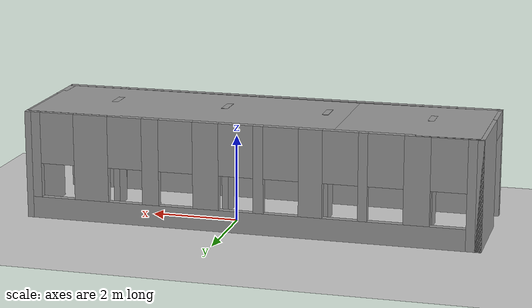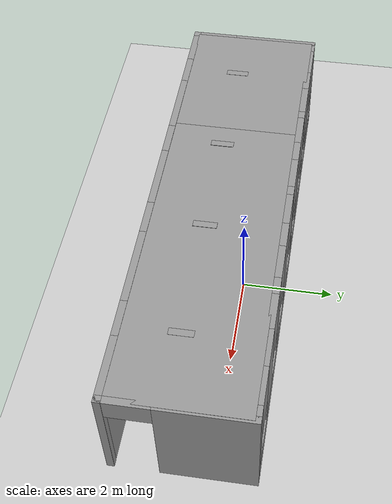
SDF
<sdf version="1.7">
 <world name="default">
  <model name="ground_plane">
   <static>1</static>
   <link name="link">
    <collision name="collision">
     <geometry><plane><normal>0 0 1</normal><size>100 100</size></plane></geometry>
     <surface><friction><ode><mu>100</mu><mu2>50</mu2></ode></friction></surface>
    </collision>
    <visual name="visual">
     <cast_shadows>0</cast_shadows>
     <geometry><plane><normal>0 0 1</normal><size>100 100</size></plane></geometry>
     <material>
      <script><uri>file://media/materials/scripts/gazebo.material</uri><name>Gazebo/Grey</name></script>
     </material>
    </visual>
   </link>
  </model>
  <light name="sun" type="directional">
   <pose>0 0 10 0 -0 0</pose>
   <diffuse>0.8 0.8 0.8 1</diffuse>
   <specular>0.2 0.2 0.2 1</specular>
   <attenuation>
    <range>1000</range>
    <constant>0.9</constant>
    <linear>0.01</linear>
    <quadratic>0.001</quadratic>
   </attenuation>
   <direction>-0.5 0.1 -0.9</direction>
   <spot><inner_angle>0</inner_angle><outer_angle>0</outer_angle><falloff>0</falloff></spot>
  </light>
  <scene><shadows>0</shadows><ambient>0.4 0.4 0.4 1</ambient><background>0.7 0.7 0.7 1</background></scene>
  <physics type="ode">
   <real_time_update_rate>1000</real_time_update_rate>
   <max_step_size>0.001</max_step_size>
   <real_time_factor>1</real_time_factor>
   <ode>
    <solver>
     <type>quick</type>
     <iters>150</iters>
     <precon_iters>0</precon_iters>
     <sor>1.4</sor>
     <use_dynamic_moi_rescaling>1</use_dynamic_moi_rescaling>
    </solver>
    <constraints>
     <cfm>1e-05</cfm>
     <erp>0.2</erp>
     <contact_max_correcting_vel>2000</contact_max_correcting_vel>
     <contact_surface_layer>0.01</contact_surface_layer>
    </constraints>
   </ode>
  </physics>
  <gravity>0 0 -9.8</gravity>
  <magnetic_field>6e-06 2.3e-05 -4.2e-05</magnetic_field>
  <atmosphere type="adiabatic"/>
  <audio><device>default</device></audio>
  <spherical_coordinates>
   <surface_model>EARTH_WGS84</surface_model>
   <latitude_deg>0</latitude_deg>
   <longitude_deg>0</longitude_deg>
   <elevation>0</elevation>
   <heading_deg>0</heading_deg>
  </spherical_coordinates>
  <model name="grey_wall_clone_2">
   <static>1</static>
   <link name="link">
    <pose>0 0 1.4 0 -0 0</pose>
    <collision name="collision"><geometry><box><size>7.5 0.2 2.8</size></box></geometry></collision>
    <visual name="visual">
     <cast_shadows>0</cast_shadows>
     <geometry><box><size>7.5 0.2 2.8</size></box></geometry>
     <material>
      <script>
       <uri>model://grey_wall/materials/scripts</uri>
       <uri>model://grey_wall/materials/textures</uri>
       <name>vrc/grey_wall</name>
      </script>
     </material>
    </visual>
   </link>
   <pose>0.940356 -1.94479 2.39221 1.56898 0.001795 3.14006</pose>
  </model>
  <model name="Warehouse">
   <pose>-0.503433 -0.236061 0 0 -0 0</pose>
   <link name="Wall_0">
    <pose>-5.175 -0.3075 0 0 -0 1.5708</pose>
    <visual name="Wall_0_Visual_0">
     <pose>-1.42278 0 1.25 0 -0 0</pose>
     <geometry><box><size>0.154444 0.15 2.5</size></box></geometry>
     <material>
      <script><uri>file://media/materials/scripts/gazebo.material</uri><name>Gazebo/Grey</name></script>
      <ambient>1 1 1 1</ambient>
     </material>
     <meta><layer>0</layer></meta>
    </visual>
    <collision name="Wall_0_Collision_0">
     <geometry><box><size>0.154444 0.15 2.5</size></box></geometry>
     <pose>-1.42278 0 1.25 0 -0 0</pose>
    </collision>
    <visual name="Wall_0_Visual_1">
     <pose>0.527222 0 1.25 0 -0 0</pose>
     <geometry><box><size>1.94556 0.15 2.5</size></box></geometry>
     <material>
      <script><uri>file://media/materials/scripts/gazebo.material</uri><name>Gazebo/Grey</name></script>
      <ambient>1 1 1 1</ambient>
     </material>
     <meta><layer>0</layer></meta>
    </visual>
    <collision name="Wall_0_Collision_1">
     <geometry><box><size>1.94556 0.15 2.5</size></box></geometry>
     <pose>0.527222 0 1.25 0 -0 0</pose>
    </collision>
    <visual name="Wall_0_Visual_2">
     <pose>-0.895556 0 2.25 0 -0 0</pose>
     <geometry><box><size>0.9 0.15 0.5</size></box></geometry>
     <material>
      <script><uri>file://media/materials/scripts/gazebo.material</uri><name>Gazebo/Grey</name></script>
      <ambient>1 1 1 1</ambient>
     </material>
     <meta><layer>0</layer></meta>
    </visual>
    <collision name="Wall_0_Collision_2">
     <geometry><box><size>0.9 0.15 0.5</size></box></geometry>
     <pose>-0.895556 0 2.25 0 -0 0</pose>
    </collision>
   </link>
   <link name="Wall_10">
    <collision name="Wall_10_Collision">
     <geometry><box><size>0.5 0.15 2.5</size></box></geometry>
     <pose>0 0 1.25 0 -0 0</pose>
    </collision>
    <visual name="Wall_10_Visual">
     <pose>0 0 1.25 0 -0 0</pose>
     <geometry><box><size>0.5 0.15 2.5</size></box></geometry>
     <material>
      <script><uri>file://media/materials/scripts/gazebo.material</uri><name>Gazebo/Grey</name></script>
      <ambient>1 1 1 1</ambient>
     </material>
     <meta><layer>0</layer></meta>
    </visual>
    <pose>-1.43035 -0.523709 0 0 -0 1.5708</pose>
   </link>
   <link name="Wall_12">
    <collision name="Wall_12_Collision">
     <geometry><box><size>0.5 0.15 2.5</size></box></geometry>
     <pose>0 0 1.25 0 -0 0</pose>
    </collision>
    <visual name="Wall_12_Visual">
     <pose>0 0 1.25 0 -0 0</pose>
     <geometry><box><size>0.5 0.15 2.5</size></box></geometry>
     <material>
      <script><uri>file://media/materials/scripts/gazebo.material</uri><name>Gazebo/Grey</name></script>
      <ambient>1 1 1 1</ambient>
     </material>
     <meta><layer>0</layer></meta>
    </visual>
    <pose>0.934869 -0.515013 0 0 -0 1.5708</pose>
   </link>
   <link name="Wall_15">
    <collision name="Wall_15_Collision">
     <geometry><box><size>0.5 0.15 2.5</size></box></geometry>
     <pose>0 0 1.25 0 -0 0</pose>
    </collision>
    <visual name="Wall_15_Visual">
     <pose>0 0 1.25 0 -0 0</pose>
     <geometry><box><size>0.5 0.15 2.5</size></box></geometry>
     <material>
      <script><uri>file://media/materials/scripts/gazebo.material</uri><name>Gazebo/Grey</name></script>
      <ambient>1 1 1 1</ambient>
     </material>
     <meta><layer>0</layer></meta>
    </visual>
    <pose>3.59574 -0.515013 0 0 -0 1.5708</pose>
   </link>
   <link name="Wall_2">
    <pose>-0 1.1175 0 0 -0 0</pose>
    <visual name="Wall_2_Visual_0">
     <pose>-5.07496 0 1.25 0 -0 0</pose>
     <geometry><box><size>0.350087 0.15 2.5</size></box></geometry>
     <material>
      <script><uri>file://media/materials/scripts/gazebo.material</uri><name>Gazebo/Grey</name></script>
      <ambient>1 1 1 1</ambient>
     </material>
     <meta><layer>0</layer></meta>
    </visual>
    <collision name="Wall_2_Collision_0">
     <geometry><box><size>0.350087 0.15 2.5</size></box></geometry>
     <pose>-5.07496 0 1.25 0 -0 0</pose>
    </collision>
    <visual name="Wall_2_Visual_1">
     <pose>0.175043 0 0.25 0 -0 0</pose>
     <geometry><box><size>10.1499 0.15 0.5</size></box></geometry>
     <material>
      <script><uri>file://media/materials/scripts/gazebo.material</uri><name>Gazebo/Grey</name></script>
      <ambient>1 1 1 1</ambient>
     </material>
     <meta><layer>0</layer></meta>
    </visual>
    <collision name="Wall_2_Collision_1">
     <geometry><box><size>10.1499 0.15 0.5</size></box></geometry>
     <pose>0.175043 0 0.25 0 -0 0</pose>
    </collision>
    <visual name="Wall_2_Visual_2">
     <pose>-3.80861 0 1.5 0 -0 0</pose>
     <geometry><box><size>0.582609 0.15 2</size></box></geometry>
     <material>
      <script><uri>file://media/materials/scripts/gazebo.material</uri><name>Gazebo/Grey</name></script>
      <ambient>1 1 1 1</ambient>
     </material>
     <meta><layer>0</layer></meta>
    </visual>
    <collision name="Wall_2_Collision_2">
     <geometry><box><size>0.582609 0.15 2</size></box></geometry>
     <pose>-3.80861 0 1.5 0 -0 0</pose>
    </collision>
    <visual name="Wall_2_Visual_3">
     <pose>-2.61296 0 1.5 0 -0 0</pose>
     <geometry><box><size>0.208696 0.15 2</size></box></geometry>
     <material>
      <script><uri>file://media/materials/scripts/gazebo.material</uri><name>Gazebo/Grey</name></script>
      <ambient>1 1 1 1</ambient>
     </material>
     <meta><layer>0</layer></meta>
    </visual>
    <collision name="Wall_2_Collision_3">
     <geometry><box><size>0.208696 0.15 2</size></box></geometry>
     <pose>-2.61296 0 1.5 0 -0 0</pose>
    </collision>
    <visual name="Wall_2_Visual_4">
     <pose>-1.43904 0 1.5 0 -0 0</pose>
     <geometry><box><size>0.53913 0.15 2</size></box></geometry>
     <material>
      <script><uri>file://media/materials/scripts/gazebo.material</uri><name>Gazebo/Grey</name></script>
      <ambient>1 1 1 1</ambient>
     </material>
     <meta><layer>0</layer></meta>
    </visual>
    <collision name="Wall_2_Collision_4">
     <geometry><box><size>0.53913 0.15 2</size></box></geometry>
     <pose>-1.43904 0 1.5 0 -0 0</pose>
    </collision>
    <visual name="Wall_2_Visual_5">
     <pose>-0.252087 0 1.5 0 -0 0</pose>
     <geometry><box><size>0.234783 0.15 2</size></box></geometry>
     <material>
      <script><uri>file://media/materials/scripts/gazebo.material</uri><name>Gazebo/Grey</name></script>
      <ambient>1 1 1 1</ambient>
     </material>
     <meta><layer>0</layer></meta>
    </visual>
    <collision name="Wall_2_Collision_5">
     <geometry><box><size>0.234783 0.15 2</size></box></geometry>
     <pose>-0.252087 0 1.5 0 -0 0</pose>
    </collision>
    <visual name="Wall_2_Visual_6">
     <pose>0.965304 0 1.5 0 -0 0</pose>
     <geometry><box><size>0.6 0.15 2</size></box></geometry>
     <material>
      <script><uri>file://media/materials/scripts/gazebo.material</uri><name>Gazebo/Grey</name></script>
      <ambient>1 1 1 1</ambient>
     </material>
     <meta><layer>0</layer></meta>
    </visual>
    <collision name="Wall_2_Collision_6">
     <geometry><box><size>0.6 0.15 2</size></box></geometry>
     <pose>0.965304 0 1.5 0 -0 0</pose>
    </collision>
    <visual name="Wall_2_Visual_7">
     <pose>2.26313 0 1.5 0 -0 0</pose>
     <geometry><box><size>0.395652 0.15 2</size></box></geometry>
     <material>
      <script><uri>file://media/materials/scripts/gazebo.material</uri><name>Gazebo/Grey</name></script>
      <ambient>1 1 1 1</ambient>
     </material>
     <meta><layer>0</layer></meta>
    </visual>
    <collision name="Wall_2_Collision_7">
     <geometry><box><size>0.395652 0.15 2</size></box></geometry>
     <pose>2.26313 0 1.5 0 -0 0</pose>
    </collision>
    <visual name="Wall_2_Visual_8">
     <pose>3.67617 0 1.5 0 -0 0</pose>
     <geometry><box><size>0.813044 0.15 2</size></box></geometry>
     <material>
      <script><uri>file://media/materials/scripts/gazebo.material</uri><name>Gazebo/Grey</name></script>
      <ambient>1 1 1 1</ambient>
     </material>
     <meta><layer>0</layer></meta>
    </visual>
    <collision name="Wall_2_Collision_8">
     <geometry><box><size>0.813044 0.15 2</size></box></geometry>
     <pose>3.67617 0 1.5 0 -0 0</pose>
    </collision>
    <visual name="Wall_2_Visual_9">
     <pose>5.06635 0 1.5 0 -0 0</pose>
     <geometry><box><size>0.367305 0.15 2</size></box></geometry>
     <material>
      <script><uri>file://media/materials/scripts/gazebo.material</uri><name>Gazebo/Grey</name></script>
      <ambient>1 1 1 1</ambient>
     </material>
     <meta><layer>0</layer></meta>
    </visual>
    <collision name="Wall_2_Collision_9">
     <geometry><box><size>0.367305 0.15 2</size></box></geometry>
     <pose>5.06635 0 1.5 0 -0 0</pose>
    </collision>
    <visual name="Wall_2_Visual_10">
     <pose>-4.49991 0 1.9 0 -0 0</pose>
     <geometry><box><size>0.8 0.15 1.2</size></box></geometry>
     <material>
      <script><uri>file://media/materials/scripts/gazebo.material</uri><name>Gazebo/Grey</name></script>
      <ambient>1 1 1 1</ambient>
     </material>
     <meta><layer>0</layer></meta>
    </visual>
    <collision name="Wall_2_Collision_10">
     <geometry><box><size>0.8 0.15 1.2</size></box></geometry>
     <pose>-4.49991 0 1.9 0 -0 0</pose>
    </collision>
    <visual name="Wall_2_Visual_11">
     <pose>-3.1173 0 1.9 0 -0 0</pose>
     <geometry><box><size>0.8 0.15 1.2</size></box></geometry>
     <material>
      <script><uri>file://media/materials/scripts/gazebo.material</uri><name>Gazebo/Grey</name></script>
      <ambient>1 1 1 1</ambient>
     </material>
     <meta><layer>0</layer></meta>
    </visual>
    <collision name="Wall_2_Collision_11">
     <geometry><box><size>0.8 0.15 1.2</size></box></geometry>
     <pose>-3.1173 0 1.9 0 -0 0</pose>
    </collision>
    <visual name="Wall_2_Visual_12">
     <pose>-2.10861 0 1.9 0 -0 0</pose>
     <geometry><box><size>0.8 0.15 1.2</size></box></geometry>
     <material>
      <script><uri>file://media/materials/scripts/gazebo.material</uri><name>Gazebo/Grey</name></script>
      <ambient>1 1 1 1</ambient>
     </material>
     <meta><layer>0</layer></meta>
    </visual>
    <collision name="Wall_2_Collision_12">
     <geometry><box><size>0.8 0.15 1.2</size></box></geometry>
     <pose>-2.10861 0 1.9 0 -0 0</pose>
    </collision>
    <visual name="Wall_2_Visual_13">
     <pose>-0.769478 0 1.9 0 -0 0</pose>
     <geometry><box><size>0.8 0.15 1.2</size></box></geometry>
     <material>
      <script><uri>file://media/materials/scripts/gazebo.material</uri><name>Gazebo/Grey</name></script>
      <ambient>1 1 1 1</ambient>
     </material>
     <meta><layer>0</layer></meta>
    </visual>
    <collision name="Wall_2_Collision_13">
     <geometry><box><size>0.8 0.15 1.2</size></box></geometry>
     <pose>-0.769478 0 1.9 0 -0 0</pose>
    </collision>
    <visual name="Wall_2_Visual_14">
     <pose>0.265304 0 1.9 0 -0 0</pose>
     <geometry><box><size>0.8 0.15 1.2</size></box></geometry>
     <material>
      <script><uri>file://media/materials/scripts/gazebo.material</uri><name>Gazebo/Grey</name></script>
      <ambient>1 1 1 1</ambient>
     </material>
     <meta><layer>0</layer></meta>
    </visual>
    <collision name="Wall_2_Collision_14">
     <geometry><box><size>0.8 0.15 1.2</size></box></geometry>
     <pose>0.265304 0 1.9 0 -0 0</pose>
    </collision>
    <visual name="Wall_2_Visual_15">
     <pose>1.6653 0 1.9 0 -0 0</pose>
     <geometry><box><size>0.8 0.15 1.2</size></box></geometry>
     <material>
      <script><uri>file://media/materials/scripts/gazebo.material</uri><name>Gazebo/Grey</name></script>
      <ambient>1 1 1 1</ambient>
     </material>
     <meta><layer>0</layer></meta>
    </visual>
    <collision name="Wall_2_Collision_15">
     <geometry><box><size>0.8 0.15 1.2</size></box></geometry>
     <pose>1.6653 0 1.9 0 -0 0</pose>
    </collision>
    <visual name="Wall_2_Visual_16">
     <pose>2.8653 0 1.9 0 -0 0</pose>
     <geometry><box><size>0.808696 0.15 1.2</size></box></geometry>
     <material>
      <script><uri>file://media/materials/scripts/gazebo.material</uri><name>Gazebo/Grey</name></script>
      <ambient>1 1 1 1</ambient>
     </material>
     <meta><layer>0</layer></meta>
    </visual>
    <collision name="Wall_2_Collision_16">
     <geometry><box><size>0.808696 0.15 1.2</size></box></geometry>
     <pose>2.8653 0 1.9 0 -0 0</pose>
    </collision>
    <visual name="Wall_2_Visual_17">
     <pose>4.48269 0 1.9 0 -0 0</pose>
     <geometry><box><size>0.8 0.15 1.2</size></box></geometry>
     <material>
      <script><uri>file://media/materials/scripts/gazebo.material</uri><name>Gazebo/Grey</name></script>
      <ambient>1 1 1 1</ambient>
     </material>
     <meta><layer>0</layer></meta>
    </visual>
    <collision name="Wall_2_Collision_17">
     <geometry><box><size>0.8 0.15 1.2</size></box></geometry>
     <pose>4.48269 0 1.9 0 -0 0</pose>
    </collision>
   </link>
   <link name="Wall_3">
    <pose>5.175 -0.3075 0 0 -0 -1.5708</pose>
    <visual name="Wall_3_Visual_0">
     <pose>-0.527222 0 1.25 0 -0 0</pose>
     <geometry><box><size>1.94556 0.15 2.5</size></box></geometry>
     <material>
      <script><uri>file://media/materials/scripts/gazebo.material</uri><name>Gazebo/Grey</name></script>
      <ambient>1 1 1 1</ambient>
     </material>
     <meta><layer>0</layer></meta>
    </visual>
    <collision name="Wall_3_Collision_0">
     <geometry><box><size>1.94556 0.15 2.5</size></box></geometry>
     <pose>-0.527222 0 1.25 0 -0 0</pose>
    </collision>
    <visual name="Wall_3_Visual_1">
     <pose>1.42278 0 1.25 0 -0 0</pose>
     <geometry><box><size>0.154444 0.15 2.5</size></box></geometry>
     <material>
      <script><uri>file://media/materials/scripts/gazebo.material</uri><name>Gazebo/Grey</name></script>
      <ambient>1 1 1 1</ambient>
     </material>
     <meta><layer>0</layer></meta>
    </visual>
    <collision name="Wall_3_Collision_1">
     <geometry><box><size>0.154444 0.15 2.5</size></box></geometry>
     <pose>1.42278 0 1.25 0 -0 0</pose>
    </collision>
    <visual name="Wall_3_Visual_2">
     <pose>0.895556 0 2.25 0 -0 0</pose>
     <geometry><box><size>0.9 0.15 0.5</size></box></geometry>
     <material>
      <script><uri>file://media/materials/scripts/gazebo.material</uri><name>Gazebo/Grey</name></script>
      <ambient>1 1 1 1</ambient>
     </material>
     <meta><layer>0</layer></meta>
    </visual>
    <collision name="Wall_3_Collision_2">
     <geometry><box><size>0.9 0.15 0.5</size></box></geometry>
     <pose>0.895556 0 2.25 0 -0 0</pose>
    </collision>
   </link>
   <link name="Wall_4">
    <pose>-0 -1.7325 0 0 -0 3.14159</pose>
    <visual name="Wall_4_Visual_0">
     <pose>-4.54461 0 1.25 0 -0 0</pose>
     <geometry><box><size>1.41078 0.15 2.5</size></box></geometry>
     <material>
      <script><uri>file://media/materials/scripts/gazebo.material</uri><name>Gazebo/Grey</name></script>
      <ambient>1 1 1 1</ambient>
     </material>
     <meta><layer>0</layer></meta>
    </visual>
    <collision name="Wall_4_Collision_0">
     <geometry><box><size>1.41078 0.15 2.5</size></box></geometry>
     <pose>-4.54461 0 1.25 0 -0 0</pose>
    </collision>
    <visual name="Wall_4_Visual_1">
     <pose>0.705391 0 0.25 0 -0 0</pose>
     <geometry><box><size>9.08922 0.15 0.5</size></box></geometry>
     <material>
      <script><uri>file://media/materials/scripts/gazebo.material</uri><name>Gazebo/Grey</name></script>
      <ambient>1 1 1 1</ambient>
     </material>
     <meta><layer>0</layer></meta>
    </visual>
    <collision name="Wall_4_Collision_1">
     <geometry><box><size>9.08922 0.15 0.5</size></box></geometry>
     <pose>0.705391 0 0.25 0 -0 0</pose>
    </collision>
    <visual name="Wall_4_Visual_2">
     <pose>-2.16965 0 1.5 0 -0 0</pose>
     <geometry><box><size>1.73913 0.15 2</size></box></geometry>
     <material>
      <script><uri>file://media/materials/scripts/gazebo.material</uri><name>Gazebo/Grey</name></script>
      <ambient>1 1 1 1</ambient>
     </material>
     <meta><layer>0</layer></meta>
    </visual>
    <collision name="Wall_4_Collision_2">
     <geometry><box><size>1.73913 0.15 2</size></box></geometry>
     <pose>-2.16965 0 1.5 0 -0 0</pose>
    </collision>
    <visual name="Wall_4_Visual_3">
     <pose>0.269478 0 1.5 0 -0 0</pose>
     <geometry><box><size>1.53913 0.15 2</size></box></geometry>
     <material>
      <script><uri>file://media/materials/scripts/gazebo.material</uri><name>Gazebo/Grey</name></script>
      <ambient>1 1 1 1</ambient>
     </material>
     <meta><layer>0</layer></meta>
    </visual>
    <collision name="Wall_4_Collision_3">
     <geometry><box><size>1.53913 0.15 2</size></box></geometry>
     <pose>0.269478 0 1.5 0 -0 0</pose>
    </collision>
    <visual name="Wall_4_Visual_4">
     <pose>2.6173 0 1.5 0 -0 0</pose>
     <geometry><box><size>1.55652 0.15 2</size></box></geometry>
     <material>
      <script><uri>file://media/materials/scripts/gazebo.material</uri><name>Gazebo/Grey</name></script>
      <ambient>1 1 1 1</ambient>
     </material>
     <meta><layer>0</layer></meta>
    </visual>
    <collision name="Wall_4_Collision_4">
     <geometry><box><size>1.55652 0.15 2</size></box></geometry>
     <pose>2.6173 0 1.5 0 -0 0</pose>
    </collision>
    <visual name="Wall_4_Visual_5">
     <pose>4.72278 0 1.5 0 -0 0</pose>
     <geometry><box><size>1.05444 0.15 2</size></box></geometry>
     <material>
      <script><uri>file://media/materials/scripts/gazebo.material</uri><name>Gazebo/Grey</name></script>
      <ambient>1 1 1 1</ambient>
     </material>
     <meta><layer>0</layer></meta>
    </visual>
    <collision name="Wall_4_Collision_5">
     <geometry><box><size>1.05444 0.15 2</size></box></geometry>
     <pose>4.72278 0 1.5 0 -0 0</pose>
    </collision>
    <visual name="Wall_4_Visual_6">
     <pose>-3.43922 0 1.9 0 -0 0</pose>
     <geometry><box><size>0.8 0.15 1.2</size></box></geometry>
     <material>
      <script><uri>file://media/materials/scripts/gazebo.material</uri><name>Gazebo/Grey</name></script>
      <ambient>1 1 1 1</ambient>
     </material>
     <meta><layer>0</layer></meta>
    </visual>
    <collision name="Wall_4_Collision_6">
     <geometry><box><size>0.8 0.15 1.2</size></box></geometry>
     <pose>-3.43922 0 1.9 0 -0 0</pose>
    </collision>
    <visual name="Wall_4_Visual_7">
     <pose>-0.900087 0 1.9 0 -0 0</pose>
     <geometry><box><size>0.8 0.15 1.2</size></box></geometry>
     <material>
      <script><uri>file://media/materials/scripts/gazebo.material</uri><name>Gazebo/Grey</name></script>
      <ambient>1 1 1 1</ambient>
     </material>
     <meta><layer>0</layer></meta>
    </visual>
    <collision name="Wall_4_Collision_7">
     <geometry><box><size>0.8 0.15 1.2</size></box></geometry>
     <pose>-0.900087 0 1.9 0 -0 0</pose>
    </collision>
    <visual name="Wall_4_Visual_8">
     <pose>1.43904 0 1.9 0 -0 0</pose>
     <geometry><box><size>0.8 0.15 1.2</size></box></geometry>
     <material>
      <script><uri>file://media/materials/scripts/gazebo.material</uri><name>Gazebo/Grey</name></script>
      <ambient>1 1 1 1</ambient>
     </material>
     <meta><layer>0</layer></meta>
    </visual>
    <collision name="Wall_4_Collision_8">
     <geometry><box><size>0.8 0.15 1.2</size></box></geometry>
     <pose>1.43904 0 1.9 0 -0 0</pose>
    </collision>
    <visual name="Wall_4_Visual_9">
     <pose>3.79556 0 1.9 0 -0 0</pose>
     <geometry><box><size>0.8 0.15 1.2</size></box></geometry>
     <material>
      <script><uri>file://media/materials/scripts/gazebo.material</uri><name>Gazebo/Grey</name></script>
      <ambient>1 1 1 1</ambient>
     </material>
     <meta><layer>0</layer></meta>
    </visual>
    <collision name="Wall_4_Collision_9">
     <geometry><box><size>0.8 0.15 1.2</size></box></geometry>
     <pose>3.79556 0 1.9 0 -0 0</pose>
    </collision>
   </link>
   <link name="Wall_8">
    <collision name="Wall_8_Collision">
     <geometry><box><size>0.5 0.15 2.5</size></box></geometry>
     <pose>0 0 1.25 0 -0 0</pose>
    </collision>
    <visual name="Wall_8_Visual">
     <pose>0 0 1.25 0 -0 0</pose>
     <geometry><box><size>0.5 0.15 2.5</size></box></geometry>
     <material>
      <script><uri>file://media/materials/scripts/gazebo.material</uri><name>Gazebo/Grey</name></script>
      <ambient>1 1 1 1</ambient>
     </material>
     <meta><layer>0</layer></meta>
    </visual>
    <pose>-3.83904 -0.532404 0 0 -0 1.5708</pose>
   </link>
   <static>1</static>
  </model>
  <model name="grey_wall_clone_2_clone">
   <static>1</static>
   <link name="link">
    <pose>0 0 1.4 0 -0 0</pose>
    <collision name="collision"><geometry><box><size>7.5 0.2 2.8</size></box></geometry></collision>
    <visual name="visual">
     <cast_shadows>0</cast_shadows>
     <geometry><box><size>7.5 0.2 2.8</size></box></geometry>
     <material>
      <script>
       <uri>model://grey_wall/materials/scripts</uri>
       <uri>model://grey_wall/materials/textures</uri>
       <name>vrc/grey_wall</name>
      </script>
     </material>
    </visual>
   </link>
   <pose>-1.91469 -1.92005 2.38354 1.56898 -0.004898 3.14008</pose>
  </model>
 </world>
</sdf>
